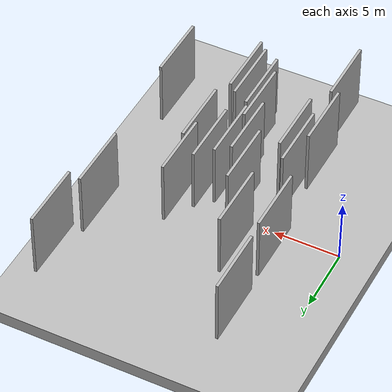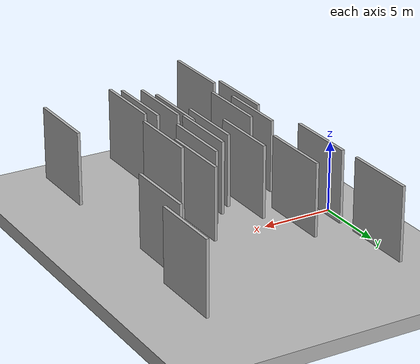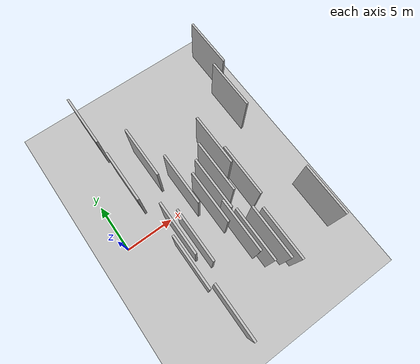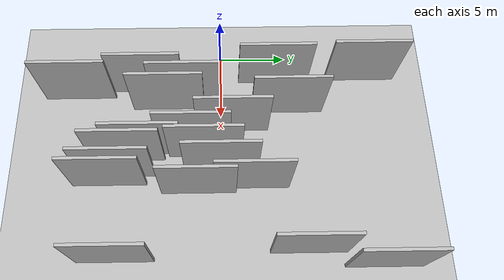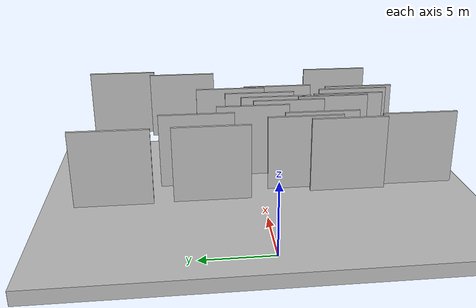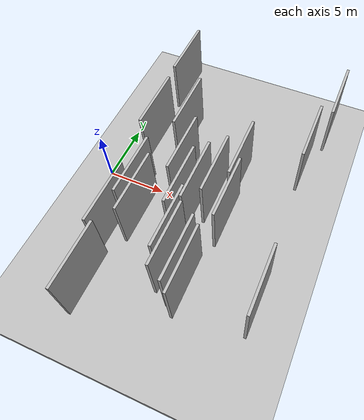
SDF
<?xml version="1.0" encoding="utf-8"?>

<sdf version="1.6">

   <world name="default">

      <gui fullscreen="0">

         <camera name="user_camera">

            <pose>-15 0 4.57585 0 0 0</pose>

            <view_controller>orbit</view_controller>

         </camera>

      </gui>

      <scene>

         <sky>

           <clouds>

             <speed>12</speed>

           </clouds>

         </sky>

         <ambient>0.4 0.4 0.4 1</ambient>

         <background>0.7 0.7 0.7 1</background>

         <shadows>1</shadows>

      </scene>

      <gravity>0 0 -9.8066</gravity>

      <magnetic_field>6e-06 2.3e-05 -4.2e-05</magnetic_field>

      <physics default="0" name="default_physics" type="ode">

         <ode>

            <solver>

               <type>quick</type>

               <iters>10</iters>

               <sor>1.0</sor>

               <use_dynamic_moi_rescaling>0</use_dynamic_moi_rescaling>

            </solver>

            <constraints>

               <cfm>0</cfm>

               <erp>0.2</erp>

               <contact_max_correcting_vel>100</contact_max_correcting_vel>

               <contact_surface_layer>0.001</contact_surface_layer>

            </constraints>

         </ode>

         <max_step_size>0.004</max_step_size>

         <real_time_factor>1</real_time_factor>

         <real_time_update_rate>250</real_time_update_rate>

      </physics>

      <light name="sun" type="directional">

         <cast_shadows>1</cast_shadows>

         <pose>0 0 10 0 0 0</pose>

         <diffuse>0.8 0.8 0.8 1</diffuse>

         <specular>0.2 0.2 0.2 1</specular>

         <attenuation>

            <range>1000</range>

            <constant>0.9</constant>

            <linear>0.01</linear>

            <quadratic>0.001</quadratic>

         </attenuation>

         <direction>-0.5 0.1 -0.9</direction>

      </light>

      <include>

         <name>ground_plane_1</name>

         <uri>model://HANNAS_ground_plane</uri>

         <pose>0 0 0  0 0 0</pose>

      </include>

      <include>

         <name>ground_plane_2</name>

         <uri>model://HANNAS_ground_plane</uri>

         <pose>100 0 0  0 0 0</pose>

      </include>

      <model name="HANNAS_wall_1">

         <static>1</static>

         <pose frame="">10.4375 -6.9571 2.5 0.000000 0.000000 1.570796</pose>

         <link name="link">

            <pose frame="">0 0 2.50 0 0 0</pose>

            <collision name="collision">

               <geometry>

                  <box>

                     <size>5.00 0.2 5.00</size>

                  </box>

               </geometry>

               <max_contacts>10</max_contacts>

               <surface>

                  <contact>

                     <ode/>

                  </contact>

                  <bounce/>

                  <friction>

                     <torsional>

                        <ode/>

                     </torsional>

                     <ode/>

                  </friction>

               </surface>

            </collision>

            <visual name="visual">

               <cast_shadows>0</cast_shadows>

               <geometry>

                  <box>

                     <size>5.00 0.2 5.00</size>

                  </box>

               </geometry>

               <material>

                  <script>

                     <uri>model://HANNAS_wall/materials/scripts</uri>

                     <uri>model://HANNAS_wall/materials/textures</uri>

                     <name>vrc/HANNAS_wall</name>

                  </script>

               </material>

            </visual>

            <self_collide>0</self_collide>

            <enable_wind>0</enable_wind>

            <kinematic>0</kinematic>

         </link>

      </model>

      <model name="HANNAS_wall_2">

         <static>1</static>

         <pose frame="">7.1329 0.7677 2.5 0.000000 0.000000 1.570796</pose>

         <link name="link">

            <pose frame="">0 0 2.50 0 0 0</pose>

            <collision name="collision">

               <geometry>

                  <box>

                     <size>5.00 0.2 5.00</size>

                  </box>

               </geometry>

               <max_contacts>10</max_contacts>

               <surface>

                  <contact>

                     <ode/>

                  </contact>

                  <bounce/>

                  <friction>

                     <torsional>

                        <ode/>

                     </torsional>

                     <ode/>

                  </friction>

               </surface>

            </collision>

            <visual name="visual">

               <cast_shadows>0</cast_shadows>

               <geometry>

                  <box>

                     <size>5.00 0.2 5.00</size>

                  </box>

               </geometry>

               <material>

                  <script>

                     <uri>model://HANNAS_wall/materials/scripts</uri>

                     <uri>model://HANNAS_wall/materials/textures</uri>

                     <name>vrc/HANNAS_wall</name>

                  </script>

               </material>

            </visual>

            <self_collide>0</self_collide>

            <enable_wind>0</enable_wind>

            <kinematic>0</kinematic>

         </link>

      </model>

      <model name="HANNAS_wall_3">

         <static>1</static>

         <pose frame="">10.1062 -0.0211 2.5 0.000000 0.000000 1.570796</pose>

         <link name="link">

            <pose frame="">0 0 2.50 0 0 0</pose>

            <collision name="collision">

               <geometry>

                  <box>

                     <size>5.00 0.2 5.00</size>

                  </box>

               </geometry>

               <max_contacts>10</max_contacts>

               <surface>

                  <contact>

                     <ode/>

                  </contact>

                  <bounce/>

                  <friction>

                     <torsional>

                        <ode/>

                     </torsional>

                     <ode/>

                  </friction>

               </surface>

            </collision>

            <visual name="visual">

               <cast_shadows>0</cast_shadows>

               <geometry>

                  <box>

                     <size>5.00 0.2 5.00</size>

                  </box>

               </geometry>

               <material>

                  <script>

                     <uri>model://HANNAS_wall/materials/scripts</uri>

                     <uri>model://HANNAS_wall/materials/textures</uri>

                     <name>vrc/HANNAS_wall</name>

                  </script>

               </material>

            </visual>

            <self_collide>0</self_collide>

            <enable_wind>0</enable_wind>

            <kinematic>0</kinematic>

         </link>

      </model>

      <model name="HANNAS_wall_4">

         <static>1</static>

         <pose frame="">15.7610 5.5282 2.5 0.000000 0.000000 1.570796</pose>

         <link name="link">

            <pose frame="">0 0 2.50 0 0 0</pose>

            <collision name="collision">

               <geometry>

                  <box>

                     <size>5.00 0.2 5.00</size>

                  </box>

               </geometry>

               <max_contacts>10</max_contacts>

               <surface>

                  <contact>

                     <ode/>

                  </contact>

                  <bounce/>

                  <friction>

                     <torsional>

                        <ode/>

                     </torsional>

                     <ode/>

                  </friction>

               </surface>

            </collision>

            <visual name="visual">

               <cast_shadows>0</cast_shadows>

               <geometry>

                  <box>

                     <size>5.00 0.2 5.00</size>

                  </box>

               </geometry>

               <material>

                  <script>

                     <uri>model://HANNAS_wall/materials/scripts</uri>

                     <uri>model://HANNAS_wall/materials/textures</uri>

                     <name>vrc/HANNAS_wall</name>

                  </script>

               </material>

            </visual>

            <self_collide>0</self_collide>

            <enable_wind>0</enable_wind>

            <kinematic>0</kinematic>

         </link>

      </model>

      <model name="HANNAS_wall_5">

         <static>1</static>

         <pose frame="">9.2711 -6.3599 2.5 0.000000 0.000000 1.570796</pose>

         <link name="link">

            <pose frame="">0 0 2.50 0 0 0</pose>

            <collision name="collision">

               <geometry>

                  <box>

                     <size>5.00 0.2 5.00</size>

                  </box>

               </geometry>

               <max_contacts>10</max_contacts>

               <surface>

                  <contact>

                     <ode/>

                  </contact>

                  <bounce/>

                  <friction>

                     <torsional>

                        <ode/>

                     </torsional>

                     <ode/>

                  </friction>

               </surface>

            </collision>

            <visual name="visual">

               <cast_shadows>0</cast_shadows>

               <geometry>

                  <box>

                     <size>5.00 0.2 5.00</size>

                  </box>

               </geometry>

               <material>

                  <script>

                     <uri>model://HANNAS_wall/materials/scripts</uri>

                     <uri>model://HANNAS_wall/materials/textures</uri>

                     <name>vrc/HANNAS_wall</name>

                  </script>

               </material>

            </visual>

            <self_collide>0</self_collide>

            <enable_wind>0</enable_wind>

            <kinematic>0</kinematic>

         </link>

      </model>

      <model name="HANNAS_wall_6">

         <static>1</static>

         <pose frame="">3.9397 -5.1792 2.5 0.000000 0.000000 1.570796</pose>

         <link name="link">

            <pose frame="">0 0 2.50 0 0 0</pose>

            <collision name="collision">

               <geometry>

                  <box>

                     <size>5.00 0.2 5.00</size>

                  </box>

               </geometry>

               <max_contacts>10</max_contacts>

               <surface>

                  <contact>

                     <ode/>

                  </contact>

                  <bounce/>

                  <friction>

                     <torsional>

                        <ode/>

                     </torsional>

                     <ode/>

                  </friction>

               </surface>

            </collision>

            <visual name="visual">

               <cast_shadows>0</cast_shadows>

               <geometry>

                  <box>

                     <size>5.00 0.2 5.00</size>

                  </box>

               </geometry>

               <material>

                  <script>

                     <uri>model://HANNAS_wall/materials/scripts</uri>

                     <uri>model://HANNAS_wall/materials/textures</uri>

                     <name>vrc/HANNAS_wall</name>

                  </script>

               </material>

            </visual>

            <self_collide>0</self_collide>

            <enable_wind>0</enable_wind>

            <kinematic>0</kinematic>

         </link>

      </model>

      <model name="HANNAS_wall_7">

         <static>1</static>

         <pose frame="">9.0443 -1.0770 2.5 0.000000 0.000000 1.570796</pose>

         <link name="link">

            <pose frame="">0 0 2.50 0 0 0</pose>

            <collision name="collision">

               <geometry>

                  <box>

                     <size>5.00 0.2 5.00</size>

                  </box>

               </geometry>

               <max_contacts>10</max_contacts>

               <surface>

                  <contact>

                     <ode/>

                  </contact>

                  <bounce/>

                  <friction>

                     <torsional>

                        <ode/>

                     </torsional>

                     <ode/>

                  </friction>

               </surface>

            </collision>

            <visual name="visual">

               <cast_shadows>0</cast_shadows>

               <geometry>

                  <box>

                     <size>5.00 0.2 5.00</size>

                  </box>

               </geometry>

               <material>

                  <script>

                     <uri>model://HANNAS_wall/materials/scripts</uri>

                     <uri>model://HANNAS_wall/materials/textures</uri>

                     <name>vrc/HANNAS_wall</name>

                  </script>

               </material>

            </visual>

            <self_collide>0</self_collide>

            <enable_wind>0</enable_wind>

            <kinematic>0</kinematic>

         </link>

      </model>

      <model name="HANNAS_wall_8">

         <static>1</static>

         <pose frame="">16.7109 10.2457 2.5 0.000000 0.000000 1.570796</pose>

         <link name="link">

            <pose frame="">0 0 2.50 0 0 0</pose>

            <collision name="collision">

               <geometry>

                  <box>

                     <size>5.00 0.2 5.00</size>

                  </box>

               </geometry>

               <max_contacts>10</max_contacts>

               <surface>

                  <contact>

                     <ode/>

                  </contact>

                  <bounce/>

                  <friction>

                     <torsional>

                        <ode/>

                     </torsional>

                     <ode/>

                  </friction>

               </surface>

            </collision>

            <visual name="visual">

               <cast_shadows>0</cast_shadows>

               <geometry>

                  <box>

                     <size>5.00 0.2 5.00</size>

                  </box>

               </geometry>

               <material>

                  <script>

                     <uri>model://HANNAS_wall/materials/scripts</uri>

                     <uri>model://HANNAS_wall/materials/textures</uri>

                     <name>vrc/HANNAS_wall</name>

                  </script>

               </material>

            </visual>

            <self_collide>0</self_collide>

            <enable_wind>0</enable_wind>

            <kinematic>0</kinematic>

         </link>

      </model>

      <model name="HANNAS_wall_9">

         <static>1</static>

         <pose frame="">11.3660 2.0083 2.5 0.000000 0.000000 1.570796</pose>

         <link name="link">

            <pose frame="">0 0 2.50 0 0 0</pose>

            <collision name="collision">

               <geometry>

                  <box>

                     <size>5.00 0.2 5.00</size>

                  </box>

               </geometry>

               <max_contacts>10</max_contacts>

               <surface>

                  <contact>

                     <ode/>

                  </contact>

                  <bounce/>

                  <friction>

                     <torsional>

                        <ode/>

                     </torsional>

                     <ode/>

                  </friction>

               </surface>

            </collision>

            <visual name="visual">

               <cast_shadows>0</cast_shadows>

               <geometry>

                  <box>

                     <size>5.00 0.2 5.00</size>

                  </box>

               </geometry>

               <material>

                  <script>

                     <uri>model://HANNAS_wall/materials/scripts</uri>

                     <uri>model://HANNAS_wall/materials/textures</uri>

                     <name>vrc/HANNAS_wall</name>

                  </script>

               </material>

            </visual>

            <self_collide>0</self_collide>

            <enable_wind>0</enable_wind>

            <kinematic>0</kinematic>

         </link>

      </model>

      <model name="HANNAS_wall_10">

         <static>1</static>

         <pose frame="">4.5830 -2.4192 2.5 0.000000 0.000000 1.570796</pose>

         <link name="link">

            <pose frame="">0 0 2.50 0 0 0</pose>

            <collision name="collision">

               <geometry>

                  <box>

                     <size>5.00 0.2 5.00</size>

                  </box>

               </geometry>

               <max_contacts>10</max_contacts>

               <surface>

                  <contact>

                     <ode/>

                  </contact>

                  <bounce/>

                  <friction>

                     <torsional>

                        <ode/>

                     </torsional>

                     <ode/>

                  </friction>

               </surface>

            </collision>

            <visual name="visual">

               <cast_shadows>0</cast_shadows>

               <geometry>

                  <box>

                     <size>5.00 0.2 5.00</size>

                  </box>

               </geometry>

               <material>

                  <script>

                     <uri>model://HANNAS_wall/materials/scripts</uri>

                     <uri>model://HANNAS_wall/materials/textures</uri>

                     <name>vrc/HANNAS_wall</name>

                  </script>

               </material>

            </visual>

            <self_collide>0</self_collide>

            <enable_wind>0</enable_wind>

            <kinematic>0</kinematic>

         </link>

      </model>

      <model name="HANNAS_wall_11">

         <static>1</static>

         <pose frame="">16.2003 -6.8562 2.5 0.000000 0.000000 1.570796</pose>

         <link name="link">

            <pose frame="">0 0 2.50 0 0 0</pose>

            <collision name="collision">

               <geometry>

                  <box>

                     <size>5.00 0.2 5.00</size>

                  </box>

               </geometry>

               <max_contacts>10</max_contacts>

               <surface>

                  <contact>

                     <ode/>

                  </contact>

                  <bounce/>

                  <friction>

                     <torsional>

                        <ode/>

                     </torsional>

                     <ode/>

                  </friction>

               </surface>

            </collision>

            <visual name="visual">

               <cast_shadows>0</cast_shadows>

               <geometry>

                  <box>

                     <size>5.00 0.2 5.00</size>

                  </box>

               </geometry>

               <material>

                  <script>

                     <uri>model://HANNAS_wall/materials/scripts</uri>

                     <uri>model://HANNAS_wall/materials/textures</uri>

                     <name>vrc/HANNAS_wall</name>

                  </script>

               </material>

            </visual>

            <self_collide>0</self_collide>

            <enable_wind>0</enable_wind>

            <kinematic>0</kinematic>

         </link>

      </model>

      <model name="HANNAS_wall_12">

         <static>1</static>

         <pose frame="">5.3863 -3.6748 2.5 0.000000 0.000000 1.570796</pose>

         <link name="link">

            <pose frame="">0 0 2.50 0 0 0</pose>

            <collision name="collision">

               <geometry>

                  <box>

                     <size>5.00 0.2 5.00</size>

                  </box>

               </geometry>

               <max_contacts>10</max_contacts>

               <surface>

                  <contact>

                     <ode/>

                  </contact>

                  <bounce/>

                  <friction>

                     <torsional>

                        <ode/>

                     </torsional>

                     <ode/>

                  </friction>

               </surface>

            </collision>

            <visual name="visual">

               <cast_shadows>0</cast_shadows>

               <geometry>

                  <box>

                     <size>5.00 0.2 5.00</size>

                  </box>

               </geometry>

               <material>

                  <script>

                     <uri>model://HANNAS_wall/materials/scripts</uri>

                     <uri>model://HANNAS_wall/materials/textures</uri>

                     <name>vrc/HANNAS_wall</name>

                  </script>

               </material>

            </visual>

            <self_collide>0</self_collide>

            <enable_wind>0</enable_wind>

            <kinematic>0</kinematic>

         </link>

      </model>

      <model name="HANNAS_wall_13">

         <static>1</static>

         <pose frame="">11.6826 -1.5424 2.5 0.000000 0.000000 1.570796</pose>

         <link name="link">

            <pose frame="">0 0 2.50 0 0 0</pose>

            <collision name="collision">

               <geometry>

                  <box>

                     <size>5.00 0.2 5.00</size>

                  </box>

               </geometry>

               <max_contacts>10</max_contacts>

               <surface>

                  <contact>

                     <ode/>

                  </contact>

                  <bounce/>

                  <friction>

                     <torsional>

                        <ode/>

                     </torsional>

                     <ode/>

                  </friction>

               </surface>

            </collision>

            <visual name="visual">

               <cast_shadows>0</cast_shadows>

               <geometry>

                  <box>

                     <size>5.00 0.2 5.00</size>

                  </box>

               </geometry>

               <material>

                  <script>

                     <uri>model://HANNAS_wall/materials/scripts</uri>

                     <uri>model://HANNAS_wall/materials/textures</uri>

                     <name>vrc/HANNAS_wall</name>

                  </script>

               </material>

            </visual>

            <self_collide>0</self_collide>

            <enable_wind>0</enable_wind>

            <kinematic>0</kinematic>

         </link>

      </model>

      <model name="HANNAS_wall_14">

         <static>1</static>

         <pose frame="">8.8216 -5.1553 2.5 0.000000 0.000000 1.570796</pose>

         <link name="link">

            <pose frame="">0 0 2.50 0 0 0</pose>

            <collision name="collision">

               <geometry>

                  <box>

                     <size>5.00 0.2 5.00</size>

                  </box>

               </geometry>

               <max_contacts>10</max_contacts>

               <surface>

                  <contact>

                     <ode/>

                  </contact>

                  <bounce/>

                  <friction>

                     <torsional>

                        <ode/>

                     </torsional>

                     <ode/>

                  </friction>

               </surface>

            </collision>

            <visual name="visual">

               <cast_shadows>0</cast_shadows>

               <geometry>

                  <box>

                     <size>5.00 0.2 5.00</size>

                  </box>

               </geometry>

               <material>

                  <script>

                     <uri>model://HANNAS_wall/materials/scripts</uri>

                     <uri>model://HANNAS_wall/materials/textures</uri>

                     <name>vrc/HANNAS_wall</name>

                  </script>

               </material>

            </visual>

            <self_collide>0</self_collide>

            <enable_wind>0</enable_wind>

            <kinematic>0</kinematic>

         </link>

      </model>

      <model name="HANNAS_wall_15">

         <static>1</static>

         <pose frame="">4.4597 -9.9965 2.5 0.000000 0.000000 1.570796</pose>

         <link name="link">

            <pose frame="">0 0 2.50 0 0 0</pose>

            <collision name="collision">

               <geometry>

                  <box>

                     <size>5.00 0.2 5.00</size>

                  </box>

               </geometry>

               <max_contacts>10</max_contacts>

               <surface>

                  <contact>

                     <ode/>

                  </contact>

                  <bounce/>

                  <friction>

                     <torsional>

                        <ode/>

                     </torsional>

                     <ode/>

                  </friction>

               </surface>

            </collision>

            <visual name="visual">

               <cast_shadows>0</cast_shadows>

               <geometry>

                  <box>

                     <size>5.00 0.2 5.00</size>

                  </box>

               </geometry>

               <material>

                  <script>

                     <uri>model://HANNAS_wall/materials/scripts</uri>

                     <uri>model://HANNAS_wall/materials/textures</uri>

                     <name>vrc/HANNAS_wall</name>

                  </script>

               </material>

            </visual>

            <self_collide>0</self_collide>

            <enable_wind>0</enable_wind>

            <kinematic>0</kinematic>

         </link>

      </model>

      <model name="HANNAS_wall_16">

         <static>1</static>

         <pose frame="">3.1875 10.0503 2.5 0.000000 0.000000 1.570796</pose>

         <link name="link">

            <pose frame="">0 0 2.50 0 0 0</pose>

            <collision name="collision">

               <geometry>

                  <box>

                     <size>5.00 0.2 5.00</size>

                  </box>

               </geometry>

               <max_contacts>10</max_contacts>

               <surface>

                  <contact>

                     <ode/>

                  </contact>

                  <bounce/>

                  <friction>

                     <torsional>

                        <ode/>

                     </torsional>

                     <ode/>

                  </friction>

               </surface>

            </collision>

            <visual name="visual">

               <cast_shadows>0</cast_shadows>

               <geometry>

                  <box>

                     <size>5.00 0.2 5.00</size>

                  </box>

               </geometry>

               <material>

                  <script>

                     <uri>model://HANNAS_wall/materials/scripts</uri>

                     <uri>model://HANNAS_wall/materials/textures</uri>

                     <name>vrc/HANNAS_wall</name>

                  </script>

               </material>

            </visual>

            <self_collide>0</self_collide>

            <enable_wind>0</enable_wind>

            <kinematic>0</kinematic>

         </link>

      </model>

      <model name="HANNAS_wall_17">

         <static>1</static>

         <pose frame="">8.1460 -1.8714 2.5 0.000000 0.000000 1.570796</pose>

         <link name="link">

            <pose frame="">0 0 2.50 0 0 0</pose>

            <collision name="collision">

               <geometry>

                  <box>

                     <size>5.00 0.2 5.00</size>

                  </box>

               </geometry>

               <max_contacts>10</max_contacts>

               <surface>

                  <contact>

                     <ode/>

                  </contact>

                  <bounce/>

                  <friction>

                     <torsional>

                        <ode/>

                     </torsional>

                     <ode/>

                  </friction>

               </surface>

            </collision>

            <visual name="visual">

               <cast_shadows>0</cast_shadows>

               <geometry>

                  <box>

                     <size>5.00 0.2 5.00</size>

                  </box>

               </geometry>

               <material>

                  <script>

                     <uri>model://HANNAS_wall/materials/scripts</uri>

                     <uri>model://HANNAS_wall/materials/textures</uri>

                     <name>vrc/HANNAS_wall</name>

                  </script>

               </material>

            </visual>

            <self_collide>0</self_collide>

            <enable_wind>0</enable_wind>

            <kinematic>0</kinematic>

         </link>

      </model>

      <model name="HANNAS_wall_18">

         <static>1</static>

         <pose frame="">11.0599 -7.5354 2.5 0.000000 0.000000 1.570796</pose>

         <link name="link">

            <pose frame="">0 0 2.50 0 0 0</pose>

            <collision name="collision">

               <geometry>

                  <box>

                     <size>5.00 0.2 5.00</size>

                  </box>

               </geometry>

               <max_contacts>10</max_contacts>

               <surface>

                  <contact>

                     <ode/>

                  </contact>

                  <bounce/>

                  <friction>

                     <torsional>

                        <ode/>

                     </torsional>

                     <ode/>

                  </friction>

               </surface>

            </collision>

            <visual name="visual">

               <cast_shadows>0</cast_shadows>

               <geometry>

                  <box>

                     <size>5.00 0.2 5.00</size>

                  </box>

               </geometry>

               <material>

                  <script>

                     <uri>model://HANNAS_wall/materials/scripts</uri>

                     <uri>model://HANNAS_wall/materials/textures</uri>

                     <name>vrc/HANNAS_wall</name>

                  </script>

               </material>

            </visual>

            <self_collide>0</self_collide>

            <enable_wind>0</enable_wind>

            <kinematic>0</kinematic>

         </link>

      </model>

      <model name="HANNAS_wall_19">

         <static>1</static>

         <pose frame="">3.3112 3.7920 2.5 0.000000 0.000000 1.570796</pose>

         <link name="link">

            <pose frame="">0 0 2.50 0 0 0</pose>

            <collision name="collision">

               <geometry>

                  <box>

                     <size>5.00 0.2 5.00</size>

                  </box>

               </geometry>

               <max_contacts>10</max_contacts>

               <surface>

                  <contact>

                     <ode/>

                  </contact>

                  <bounce/>

                  <friction>

                     <torsional>

                        <ode/>

                     </torsional>

                     <ode/>

                  </friction>

               </surface>

            </collision>

            <visual name="visual">

               <cast_shadows>0</cast_shadows>

               <geometry>

                  <box>

                     <size>5.00 0.2 5.00</size>

                  </box>

               </geometry>

               <material>

                  <script>

                     <uri>model://HANNAS_wall/materials/scripts</uri>

                     <uri>model://HANNAS_wall/materials/textures</uri>

                     <name>vrc/HANNAS_wall</name>

                  </script>

               </material>

            </visual>

            <self_collide>0</self_collide>

            <enable_wind>0</enable_wind>

            <kinematic>0</kinematic>

         </link>

      </model>

      <model name="HANNAS_wall_20">

         <static>1</static>

         <pose frame="">5.7513 4.6458 2.5 0.000000 0.000000 1.570796</pose>

         <link name="link">

            <pose frame="">0 0 2.50 0 0 0</pose>

            <collision name="collision">

               <geometry>

                  <box>

                     <size>5.00 0.2 5.00</size>

                  </box>

               </geometry>

               <max_contacts>10</max_contacts>

               <surface>

                  <contact>

                     <ode/>

                  </contact>

                  <bounce/>

                  <friction>

                     <torsional>

                        <ode/>

                     </torsional>

                     <ode/>

                  </friction>

               </surface>

            </collision>

            <visual name="visual">

               <cast_shadows>0</cast_shadows>

               <geometry>

                  <box>

                     <size>5.00 0.2 5.00</size>

                  </box>

               </geometry>

               <material>

                  <script>

                     <uri>model://HANNAS_wall/materials/scripts</uri>

                     <uri>model://HANNAS_wall/materials/textures</uri>

                     <name>vrc/HANNAS_wall</name>

                  </script>

               </material>

            </visual>

            <self_collide>0</self_collide>

            <enable_wind>0</enable_wind>

            <kinematic>0</kinematic>

         </link>

      </model>

   </world>

</sdf>

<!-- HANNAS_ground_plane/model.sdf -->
<sdf version="1.4">
<model name="HANNAS_ground_plane">
  <static>true</static>
    <link name="link">
      <collision name="collision">
        <geometry>
          <plane>
            <normal>0 0 1</normal>
            <size>1000 1000</size>
          </plane>
        </geometry>
        <surface>
          <friction>
            <ode>
              <mu>100</mu>
              <mu2>50</mu2>
            </ode>
          </friction>
        </surface>
      </collision>
      <visual name="visual">
        <cast_shadows>false</cast_shadows>
        <geometry>
          <plane>
            <normal>0 0 1</normal>
            <size>1000 1000</size>
          </plane>
        </geometry>
        <material>
          <script>
            <uri>model://HANNAS_ground_plane/materials/scripts/HANNAS_ground_plane.material</uri>
	    <uri>model://HANNAS_ground_plane/materials/textures</uri>
            <name>HANNASGroundPlane/Image</name>
          </script>
        </material>
      </visual>
    </link>
  </model>
</sdf>
